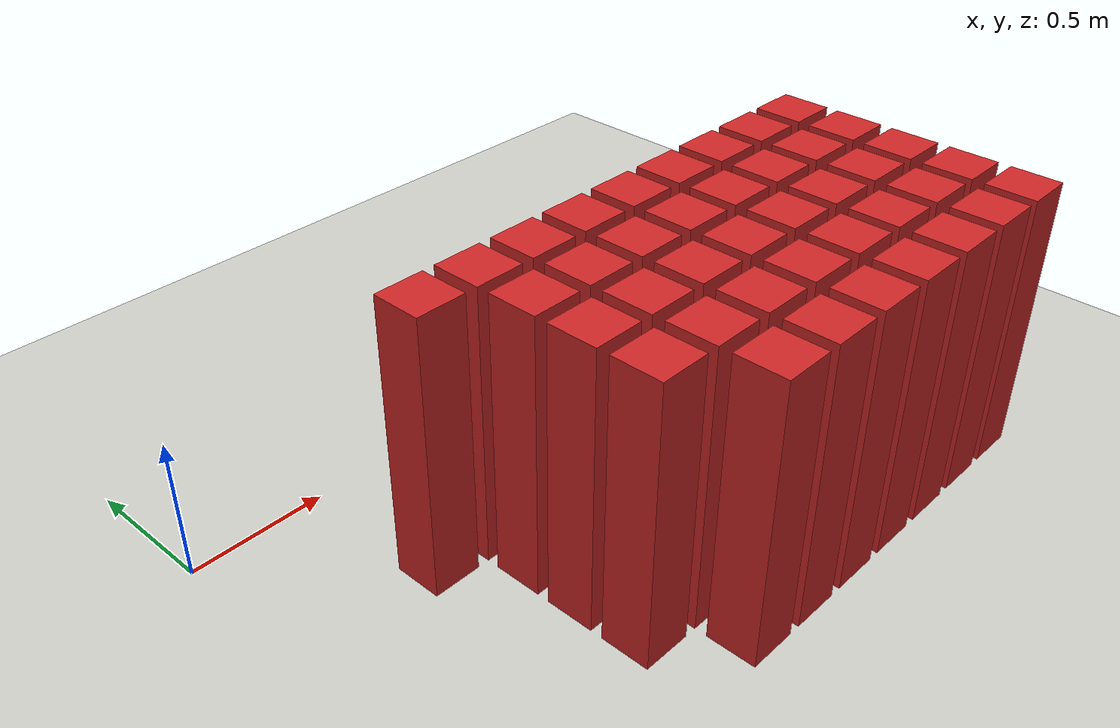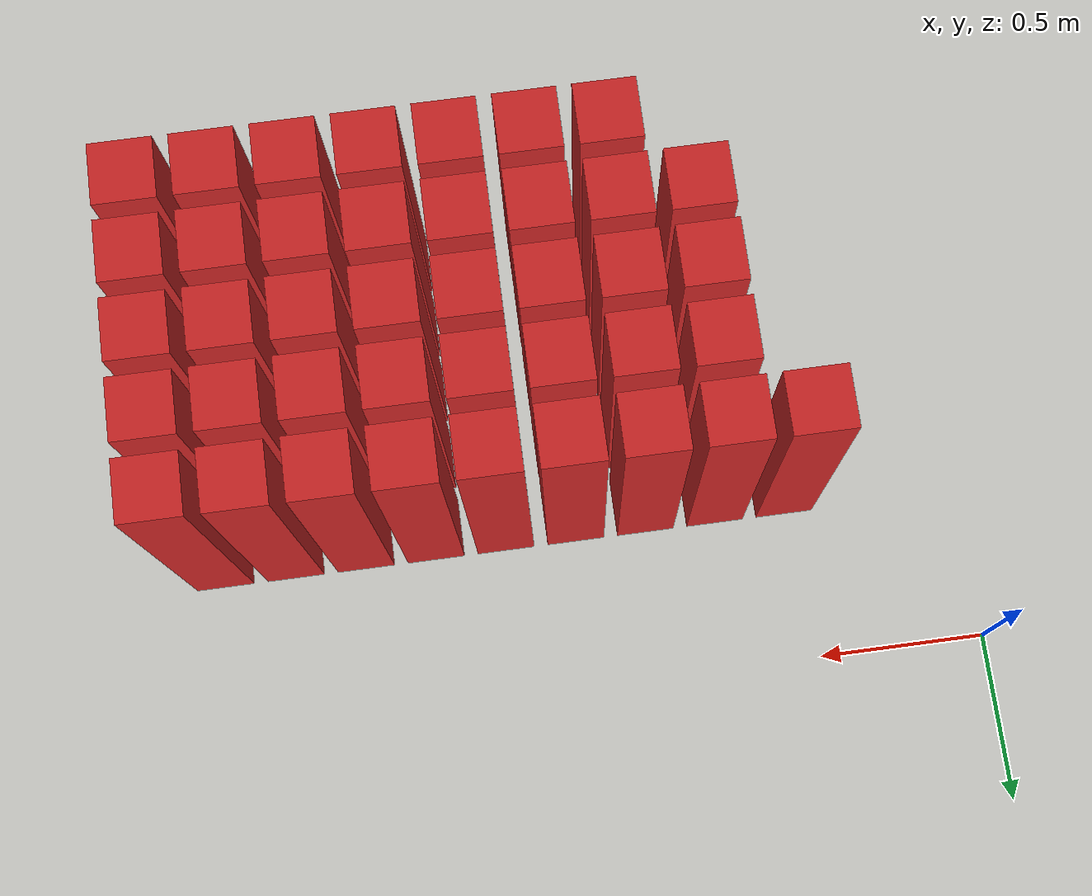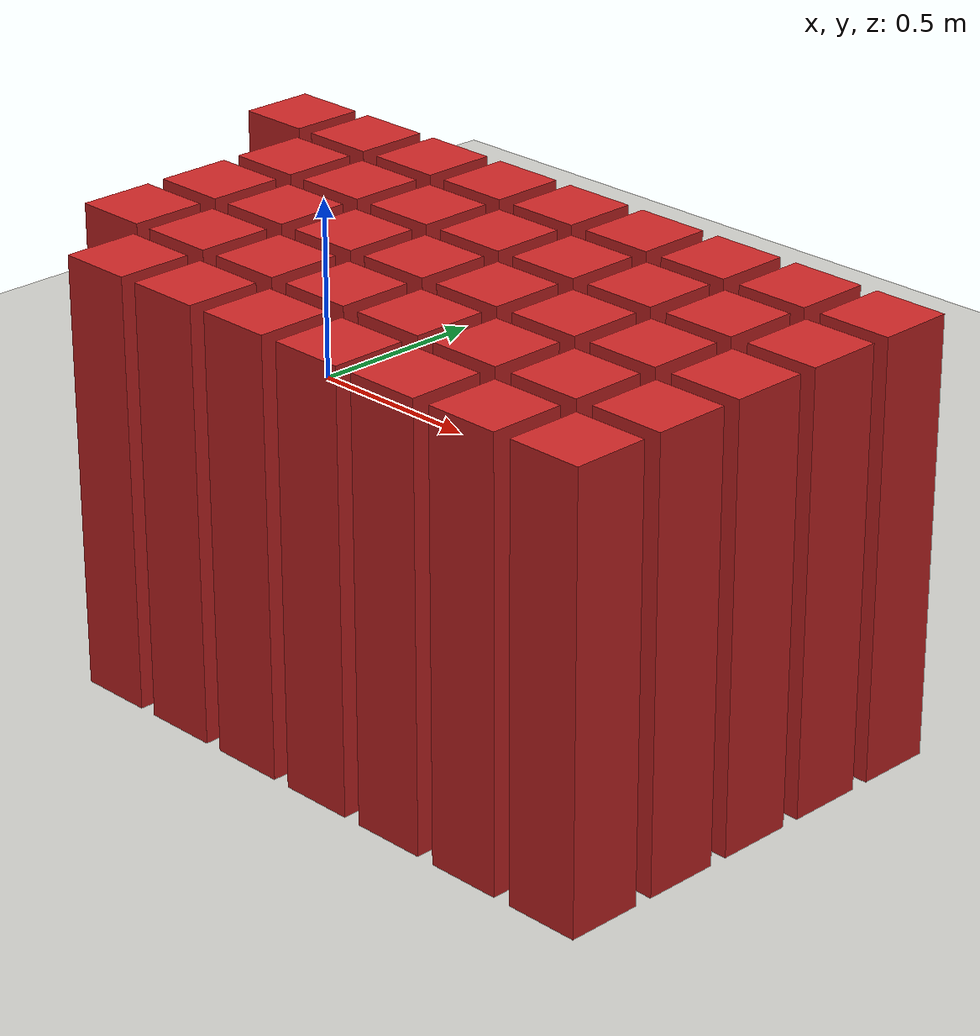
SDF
<sdf version="1.7">
 <world name="default">
  <model name="ground_plane">
   <static>1</static>
   <link name="link">
    <collision name="collision">
     <geometry><plane><normal>0 0 1</normal><size>100 100</size></plane></geometry>
     <surface>
      <contact><collide_bitmask>65535</collide_bitmask></contact>
      <friction><ode><mu>100</mu><mu2>50</mu2></ode></friction>
     </surface>
    </collision>
    <visual name="visual">
     <cast_shadows>0</cast_shadows>
     <geometry><plane><normal>0 0 1</normal><size>100 100</size></plane></geometry>
     <material>
      <script><uri>file://media/materials/scripts/gazebo.material</uri><name>Gazebo/CeilingTiled</name></script>
     </material>
    </visual>
   </link>
  </model>
  <model name="wall131">
   <link name="link">
    <pose>0 0 0.5 0 -0 0</pose>
    <inertial>
     <mass>0.5167</mass>
     <inertia>
      <ixx>0.000861167</ixx>
      <ixy>0</ixy>
      <ixz>0</ixz>
      <iyy>0.000861167</iyy>
      <iyz>0</iyz>
      <izz>0.000861167</izz>
     </inertia>
    </inertial>
    <collision name="collision">
     <geometry><box><size>0.21 0.21 1</size></box></geometry>
     <surface>
      <contact>
       <poissons_ratio>0.347</poissons_ratio>
       <elastic_modulus>8.8e+09</elastic_modulus>
       <ode><kp>100000</kp><kd>100</kd><max_vel>100</max_vel><min_depth>0.001</min_depth></ode>
      </contact>
      <friction>
       <torsional>
        <coefficient>1</coefficient>
        <use_patch_radius>0</use_patch_radius>
        <surface_radius>0.01</surface_radius>
       </torsional>
      </friction>
     </surface>
    </collision>
    <visual name="visual">
     <geometry><box><size>0.175 0.175 1</size></box></geometry>
     <material>
      <script><uri>file://media/materials/scripts/gazebo.material</uri><name>Gazebo/Red</name></script>
     </material>
    </visual>
   </link>
   <pose>0.978261 -1.41304 0 0 -0 0</pose>
  </model>
  <model name="wall132">
   <link name="link">
    <pose>0 0 0.5 0 -0 0</pose>
    <inertial>
     <mass>0.5167</mass>
     <inertia>
      <ixx>0.000861167</ixx>
      <ixy>0</ixy>
      <ixz>0</ixz>
      <iyy>0.000861167</iyy>
      <iyz>0</iyz>
      <izz>0.000861167</izz>
     </inertia>
    </inertial>
    <collision name="collision">
     <geometry><box><size>0.21 0.21 1</size></box></geometry>
     <surface>
      <contact>
       <poissons_ratio>0.347</poissons_ratio>
       <elastic_modulus>8.8e+09</elastic_modulus>
       <ode><kp>100000</kp><kd>100</kd><max_vel>100</max_vel><min_depth>0.001</min_depth></ode>
      </contact>
      <friction>
       <torsional>
        <coefficient>1</coefficient>
        <use_patch_radius>0</use_patch_radius>
        <surface_radius>0.01</surface_radius>
       </torsional>
      </friction>
     </surface>
    </collision>
    <visual name="visual">
     <geometry><box><size>0.175 0.175 1</size></box></geometry>
     <material>
      <script><uri>file://media/materials/scripts/gazebo.material</uri><name>Gazebo/Red</name></script>
     </material>
    </visual>
   </link>
   <pose>1.19565 -1.41304 0 0 -0 0</pose>
  </model>
  <model name="wall133">
   <link name="link">
    <pose>0 0 0.5 0 -0 0</pose>
    <inertial>
     <mass>0.5167</mass>
     <inertia>
      <ixx>0.000861167</ixx>
      <ixy>0</ixy>
      <ixz>0</ixz>
      <iyy>0.000861167</iyy>
      <iyz>0</iyz>
      <izz>0.000861167</izz>
     </inertia>
    </inertial>
    <collision name="collision">
     <geometry><box><size>0.21 0.21 1</size></box></geometry>
     <surface>
      <contact>
       <poissons_ratio>0.347</poissons_ratio>
       <elastic_modulus>8.8e+09</elastic_modulus>
       <ode><kp>100000</kp><kd>100</kd><max_vel>100</max_vel><min_depth>0.001</min_depth></ode>
      </contact>
      <friction>
       <torsional>
        <coefficient>1</coefficient>
        <use_patch_radius>0</use_patch_radius>
        <surface_radius>0.01</surface_radius>
       </torsional>
      </friction>
     </surface>
    </collision>
    <visual name="visual">
     <geometry><box><size>0.175 0.175 1</size></box></geometry>
     <material>
      <script><uri>file://media/materials/scripts/gazebo.material</uri><name>Gazebo/Red</name></script>
     </material>
    </visual>
   </link>
   <pose>1.41304 -1.41304 0 0 -0 0</pose>
  </model>
  <model name="wall134">
   <link name="link">
    <pose>0 0 0.5 0 -0 0</pose>
    <inertial>
     <mass>0.5167</mass>
     <inertia>
      <ixx>0.000861167</ixx>
      <ixy>0</ixy>
      <ixz>0</ixz>
      <iyy>0.000861167</iyy>
      <iyz>0</iyz>
      <izz>0.000861167</izz>
     </inertia>
    </inertial>
    <collision name="collision">
     <geometry><box><size>0.21 0.21 1</size></box></geometry>
     <surface>
      <contact>
       <poissons_ratio>0.347</poissons_ratio>
       <elastic_modulus>8.8e+09</elastic_modulus>
       <ode><kp>100000</kp><kd>100</kd><max_vel>100</max_vel><min_depth>0.001</min_depth></ode>
      </contact>
      <friction>
       <torsional>
        <coefficient>1</coefficient>
        <use_patch_radius>0</use_patch_radius>
        <surface_radius>0.01</surface_radius>
       </torsional>
      </friction>
     </surface>
    </collision>
    <visual name="visual">
     <geometry><box><size>0.175 0.175 1</size></box></geometry>
     <material>
      <script><uri>file://media/materials/scripts/gazebo.material</uri><name>Gazebo/Red</name></script>
     </material>
    </visual>
   </link>
   <pose>1.63043 -1.41304 0 0 -0 0</pose>
  </model>
  <model name="wall135">
   <link name="link">
    <pose>0 0 0.5 0 -0 0</pose>
    <inertial>
     <mass>0.5167</mass>
     <inertia>
      <ixx>0.000861167</ixx>
      <ixy>0</ixy>
      <ixz>0</ixz>
      <iyy>0.000861167</iyy>
      <iyz>0</iyz>
      <izz>0.000861167</izz>
     </inertia>
    </inertial>
    <collision name="collision">
     <geometry><box><size>0.21 0.21 1</size></box></geometry>
     <surface>
      <contact>
       <poissons_ratio>0.347</poissons_ratio>
       <elastic_modulus>8.8e+09</elastic_modulus>
       <ode><kp>100000</kp><kd>100</kd><max_vel>100</max_vel><min_depth>0.001</min_depth></ode>
      </contact>
      <friction>
       <torsional>
        <coefficient>1</coefficient>
        <use_patch_radius>0</use_patch_radius>
        <surface_radius>0.01</surface_radius>
       </torsional>
      </friction>
     </surface>
    </collision>
    <visual name="visual">
     <geometry><box><size>0.175 0.175 1</size></box></geometry>
     <material>
      <script><uri>file://media/materials/scripts/gazebo.material</uri><name>Gazebo/Red</name></script>
     </material>
    </visual>
   </link>
   <pose>1.84783 -1.41304 0 0 -0 0</pose>
  </model>
  <model name="wall136">
   <link name="link">
    <pose>0 0 0.5 0 -0 0</pose>
    <inertial>
     <mass>0.5167</mass>
     <inertia>
      <ixx>0.000861167</ixx>
      <ixy>0</ixy>
      <ixz>0</ixz>
      <iyy>0.000861167</iyy>
      <iyz>0</iyz>
      <izz>0.000861167</izz>
     </inertia>
    </inertial>
    <collision name="collision">
     <geometry><box><size>0.21 0.21 1</size></box></geometry>
     <surface>
      <contact>
       <poissons_ratio>0.347</poissons_ratio>
       <elastic_modulus>8.8e+09</elastic_modulus>
       <ode><kp>100000</kp><kd>100</kd><max_vel>100</max_vel><min_depth>0.001</min_depth></ode>
      </contact>
      <friction>
       <torsional>
        <coefficient>1</coefficient>
        <use_patch_radius>0</use_patch_radius>
        <surface_radius>0.01</surface_radius>
       </torsional>
      </friction>
     </surface>
    </collision>
    <visual name="visual">
     <geometry><box><size>0.175 0.175 1</size></box></geometry>
     <material>
      <script><uri>file://media/materials/scripts/gazebo.material</uri><name>Gazebo/Red</name></script>
     </material>
    </visual>
   </link>
   <pose>2.06522 -1.41304 0 0 -0 0</pose>
  </model>
  <model name="wall137">
   <link name="link">
    <pose>0 0 0.5 0 -0 0</pose>
    <inertial>
     <mass>0.5167</mass>
     <inertia>
      <ixx>0.000861167</ixx>
      <ixy>0</ixy>
      <ixz>0</ixz>
      <iyy>0.000861167</iyy>
      <iyz>0</iyz>
      <izz>0.000861167</izz>
     </inertia>
    </inertial>
    <collision name="collision">
     <geometry><box><size>0.21 0.21 1</size></box></geometry>
     <surface>
      <contact>
       <poissons_ratio>0.347</poissons_ratio>
       <elastic_modulus>8.8e+09</elastic_modulus>
       <ode><kp>100000</kp><kd>100</kd><max_vel>100</max_vel><min_depth>0.001</min_depth></ode>
      </contact>
      <friction>
       <torsional>
        <coefficient>1</coefficient>
        <use_patch_radius>0</use_patch_radius>
        <surface_radius>0.01</surface_radius>
       </torsional>
      </friction>
     </surface>
    </collision>
    <visual name="visual">
     <geometry><box><size>0.175 0.175 1</size></box></geometry>
     <material>
      <script><uri>file://media/materials/scripts/gazebo.material</uri><name>Gazebo/Red</name></script>
     </material>
    </visual>
   </link>
   <pose>2.28261 -1.41304 0 0 -0 0</pose>
  </model>
  <model name="wall153">
   <link name="link">
    <pose>0 0 0.5 0 -0 0</pose>
    <inertial>
     <mass>0.5167</mass>
     <inertia>
      <ixx>0.000861167</ixx>
      <ixy>0</ixy>
      <ixz>0</ixz>
      <iyy>0.000861167</iyy>
      <iyz>0</iyz>
      <izz>0.000861167</izz>
     </inertia>
    </inertial>
    <collision name="collision">
     <geometry><box><size>0.21 0.21 1</size></box></geometry>
     <surface>
      <contact>
       <poissons_ratio>0.347</poissons_ratio>
       <elastic_modulus>8.8e+09</elastic_modulus>
       <ode><kp>100000</kp><kd>100</kd><max_vel>100</max_vel><min_depth>0.001</min_depth></ode>
      </contact>
      <friction>
       <torsional>
        <coefficient>1</coefficient>
        <use_patch_radius>0</use_patch_radius>
        <surface_radius>0.01</surface_radius>
       </torsional>
      </friction>
     </surface>
    </collision>
    <visual name="visual">
     <geometry><box><size>0.175 0.175 1</size></box></geometry>
     <material>
      <script><uri>file://media/materials/scripts/gazebo.material</uri><name>Gazebo/Red</name></script>
     </material>
    </visual>
   </link>
   <pose>0.76087 -1.19565 0 0 -0 0</pose>
  </model>
  <model name="wall154">
   <link name="link">
    <pose>0 0 0.5 0 -0 0</pose>
    <inertial>
     <mass>0.5167</mass>
     <inertia>
      <ixx>0.000861167</ixx>
      <ixy>0</ixy>
      <ixz>0</ixz>
      <iyy>0.000861167</iyy>
      <iyz>0</iyz>
      <izz>0.000861167</izz>
     </inertia>
    </inertial>
    <collision name="collision">
     <geometry><box><size>0.21 0.21 1</size></box></geometry>
     <surface>
      <contact>
       <poissons_ratio>0.347</poissons_ratio>
       <elastic_modulus>8.8e+09</elastic_modulus>
       <ode><kp>100000</kp><kd>100</kd><max_vel>100</max_vel><min_depth>0.001</min_depth></ode>
      </contact>
      <friction>
       <torsional>
        <coefficient>1</coefficient>
        <use_patch_radius>0</use_patch_radius>
        <surface_radius>0.01</surface_radius>
       </torsional>
      </friction>
     </surface>
    </collision>
    <visual name="visual">
     <geometry><box><size>0.175 0.175 1</size></box></geometry>
     <material>
      <script><uri>file://media/materials/scripts/gazebo.material</uri><name>Gazebo/Red</name></script>
     </material>
    </visual>
   </link>
   <pose>0.978261 -1.19565 0 0 -0 0</pose>
  </model>
  <model name="wall155">
   <link name="link">
    <pose>0 0 0.5 0 -0 0</pose>
    <inertial>
     <mass>0.5167</mass>
     <inertia>
      <ixx>0.000861167</ixx>
      <ixy>0</ixy>
      <ixz>0</ixz>
      <iyy>0.000861167</iyy>
      <iyz>0</iyz>
      <izz>0.000861167</izz>
     </inertia>
    </inertial>
    <collision name="collision">
     <geometry><box><size>0.21 0.21 1</size></box></geometry>
     <surface>
      <contact>
       <poissons_ratio>0.347</poissons_ratio>
       <elastic_modulus>8.8e+09</elastic_modulus>
       <ode><kp>100000</kp><kd>100</kd><max_vel>100</max_vel><min_depth>0.001</min_depth></ode>
      </contact>
      <friction>
       <torsional>
        <coefficient>1</coefficient>
        <use_patch_radius>0</use_patch_radius>
        <surface_radius>0.01</surface_radius>
       </torsional>
      </friction>
     </surface>
    </collision>
    <visual name="visual">
     <geometry><box><size>0.175 0.175 1</size></box></geometry>
     <material>
      <script><uri>file://media/materials/scripts/gazebo.material</uri><name>Gazebo/Red</name></script>
     </material>
    </visual>
   </link>
   <pose>1.19565 -1.19565 0 0 -0 0</pose>
  </model>
  <model name="wall156">
   <link name="link">
    <pose>0 0 0.5 0 -0 0</pose>
    <inertial>
     <mass>0.5167</mass>
     <inertia>
      <ixx>0.000861167</ixx>
      <ixy>0</ixy>
      <ixz>0</ixz>
      <iyy>0.000861167</iyy>
      <iyz>0</iyz>
      <izz>0.000861167</izz>
     </inertia>
    </inertial>
    <collision name="collision">
     <geometry><box><size>0.21 0.21 1</size></box></geometry>
     <surface>
      <contact>
       <poissons_ratio>0.347</poissons_ratio>
       <elastic_modulus>8.8e+09</elastic_modulus>
       <ode><kp>100000</kp><kd>100</kd><max_vel>100</max_vel><min_depth>0.001</min_depth></ode>
      </contact>
      <friction>
       <torsional>
        <coefficient>1</coefficient>
        <use_patch_radius>0</use_patch_radius>
        <surface_radius>0.01</surface_radius>
       </torsional>
      </friction>
     </surface>
    </collision>
    <visual name="visual">
     <geometry><box><size>0.175 0.175 1</size></box></geometry>
     <material>
      <script><uri>file://media/materials/scripts/gazebo.material</uri><name>Gazebo/Red</name></script>
     </material>
    </visual>
   </link>
   <pose>1.41304 -1.19565 0 0 -0 0</pose>
  </model>
  <model name="wall157">
   <link name="link">
    <pose>0 0 0.5 0 -0 0</pose>
    <inertial>
     <mass>0.5167</mass>
     <inertia>
      <ixx>0.000861167</ixx>
      <ixy>0</ixy>
      <ixz>0</ixz>
      <iyy>0.000861167</iyy>
      <iyz>0</iyz>
      <izz>0.000861167</izz>
     </inertia>
    </inertial>
    <collision name="collision">
     <geometry><box><size>0.21 0.21 1</size></box></geometry>
     <surface>
      <contact>
       <poissons_ratio>0.347</poissons_ratio>
       <elastic_modulus>8.8e+09</elastic_modulus>
       <ode><kp>100000</kp><kd>100</kd><max_vel>100</max_vel><min_depth>0.001</min_depth></ode>
      </contact>
      <friction>
       <torsional>
        <coefficient>1</coefficient>
        <use_patch_radius>0</use_patch_radius>
        <surface_radius>0.01</surface_radius>
       </torsional>
      </friction>
     </surface>
    </collision>
    <visual name="visual">
     <geometry><box><size>0.175 0.175 1</size></box></geometry>
     <material>
      <script><uri>file://media/materials/scripts/gazebo.material</uri><name>Gazebo/Red</name></script>
     </material>
    </visual>
   </link>
   <pose>1.63043 -1.19565 0 0 -0 0</pose>
  </model>
  <model name="wall158">
   <link name="link">
    <pose>0 0 0.5 0 -0 0</pose>
    <inertial>
     <mass>0.5167</mass>
     <inertia>
      <ixx>0.000861167</ixx>
      <ixy>0</ixy>
      <ixz>0</ixz>
      <iyy>0.000861167</iyy>
      <iyz>0</iyz>
      <izz>0.000861167</izz>
     </inertia>
    </inertial>
    <collision name="collision">
     <geometry><box><size>0.21 0.21 1</size></box></geometry>
     <surface>
      <contact>
       <poissons_ratio>0.347</poissons_ratio>
       <elastic_modulus>8.8e+09</elastic_modulus>
       <ode><kp>100000</kp><kd>100</kd><max_vel>100</max_vel><min_depth>0.001</min_depth></ode>
      </contact>
      <friction>
       <torsional>
        <coefficient>1</coefficient>
        <use_patch_radius>0</use_patch_radius>
        <surface_radius>0.01</surface_radius>
       </torsional>
      </friction>
     </surface>
    </collision>
    <visual name="visual">
     <geometry><box><size>0.175 0.175 1</size></box></geometry>
     <material>
      <script><uri>file://media/materials/scripts/gazebo.material</uri><name>Gazebo/Red</name></script>
     </material>
    </visual>
   </link>
   <pose>1.84783 -1.19565 0 0 -0 0</pose>
  </model>
  <model name="wall159">
   <link name="link">
    <pose>0 0 0.5 0 -0 0</pose>
    <inertial>
     <mass>0.5167</mass>
     <inertia>
      <ixx>0.000861167</ixx>
      <ixy>0</ixy>
      <ixz>0</ixz>
      <iyy>0.000861167</iyy>
      <iyz>0</iyz>
      <izz>0.000861167</izz>
     </inertia>
    </inertial>
    <collision name="collision">
     <geometry><box><size>0.21 0.21 1</size></box></geometry>
     <surface>
      <contact>
       <poissons_ratio>0.347</poissons_ratio>
       <elastic_modulus>8.8e+09</elastic_modulus>
       <ode><kp>100000</kp><kd>100</kd><max_vel>100</max_vel><min_depth>0.001</min_depth></ode>
      </contact>
      <friction>
       <torsional>
        <coefficient>1</coefficient>
        <use_patch_radius>0</use_patch_radius>
        <surface_radius>0.01</surface_radius>
       </torsional>
      </friction>
     </surface>
    </collision>
    <visual name="visual">
     <geometry><box><size>0.175 0.175 1</size></box></geometry>
     <material>
      <script><uri>file://media/materials/scripts/gazebo.material</uri><name>Gazebo/Red</name></script>
     </material>
    </visual>
   </link>
   <pose>2.06522 -1.19565 0 0 -0 0</pose>
  </model>
  <model name="wall160">
   <link name="link">
    <pose>0 0 0.5 0 -0 0</pose>
    <inertial>
     <mass>0.5167</mass>
     <inertia>
      <ixx>0.000861167</ixx>
      <ixy>0</ixy>
      <ixz>0</ixz>
      <iyy>0.000861167</iyy>
      <iyz>0</iyz>
      <izz>0.000861167</izz>
     </inertia>
    </inertial>
    <collision name="collision">
     <geometry><box><size>0.21 0.21 1</size></box></geometry>
     <surface>
      <contact>
       <poissons_ratio>0.347</poissons_ratio>
       <elastic_modulus>8.8e+09</elastic_modulus>
       <ode><kp>100000</kp><kd>100</kd><max_vel>100</max_vel><min_depth>0.001</min_depth></ode>
      </contact>
      <friction>
       <torsional>
        <coefficient>1</coefficient>
        <use_patch_radius>0</use_patch_radius>
        <surface_radius>0.01</surface_radius>
       </torsional>
      </friction>
     </surface>
    </collision>
    <visual name="visual">
     <geometry><box><size>0.175 0.175 1</size></box></geometry>
     <material>
      <script><uri>file://media/materials/scripts/gazebo.material</uri><name>Gazebo/Red</name></script>
     </material>
    </visual>
   </link>
   <pose>2.28261 -1.19565 0 0 -0 0</pose>
  </model>
  <model name="wall176">
   <link name="link">
    <pose>0 0 0.5 0 -0 0</pose>
    <inertial>
     <mass>0.5167</mass>
     <inertia>
      <ixx>0.000861167</ixx>
      <ixy>0</ixy>
      <ixz>0</ixz>
      <iyy>0.000861167</iyy>
      <iyz>0</iyz>
      <izz>0.000861167</izz>
     </inertia>
    </inertial>
    <collision name="collision">
     <geometry><box><size>0.21 0.21 1</size></box></geometry>
     <surface>
      <contact>
       <poissons_ratio>0.347</poissons_ratio>
       <elastic_modulus>8.8e+09</elastic_modulus>
       <ode><kp>100000</kp><kd>100</kd><max_vel>100</max_vel><min_depth>0.001</min_depth></ode>
      </contact>
      <friction>
       <torsional>
        <coefficient>1</coefficient>
        <use_patch_radius>0</use_patch_radius>
        <surface_radius>0.01</surface_radius>
       </torsional>
      </friction>
     </surface>
    </collision>
    <visual name="visual">
     <geometry><box><size>0.175 0.175 1</size></box></geometry>
     <material>
      <script><uri>file://media/materials/scripts/gazebo.material</uri><name>Gazebo/Red</name></script>
     </material>
    </visual>
   </link>
   <pose>0.76087 -0.978261 0 0 -0 0</pose>
  </model>
  <model name="wall177">
   <link name="link">
    <pose>0 0 0.5 0 -0 0</pose>
    <inertial>
     <mass>0.5167</mass>
     <inertia>
      <ixx>0.000861167</ixx>
      <ixy>0</ixy>
      <ixz>0</ixz>
      <iyy>0.000861167</iyy>
      <iyz>0</iyz>
      <izz>0.000861167</izz>
     </inertia>
    </inertial>
    <collision name="collision">
     <geometry><box><size>0.21 0.21 1</size></box></geometry>
     <surface>
      <contact>
       <poissons_ratio>0.347</poissons_ratio>
       <elastic_modulus>8.8e+09</elastic_modulus>
       <ode><kp>100000</kp><kd>100</kd><max_vel>100</max_vel><min_depth>0.001</min_depth></ode>
      </contact>
      <friction>
       <torsional>
        <coefficient>1</coefficient>
        <use_patch_radius>0</use_patch_radius>
        <surface_radius>0.01</surface_radius>
       </torsional>
      </friction>
     </surface>
    </collision>
    <visual name="visual">
     <geometry><box><size>0.175 0.175 1</size></box></geometry>
     <material>
      <script><uri>file://media/materials/scripts/gazebo.material</uri><name>Gazebo/Red</name></script>
     </material>
    </visual>
   </link>
   <pose>0.978261 -0.978261 0 0 -0 0</pose>
  </model>
  <model name="wall178">
   <link name="link">
    <pose>0 0 0.5 0 -0 0</pose>
    <inertial>
     <mass>0.5167</mass>
     <inertia>
      <ixx>0.000861167</ixx>
      <ixy>0</ixy>
      <ixz>0</ixz>
      <iyy>0.000861167</iyy>
      <iyz>0</iyz>
      <izz>0.000861167</izz>
     </inertia>
    </inertial>
    <collision name="collision">
     <geometry><box><size>0.21 0.21 1</size></box></geometry>
     <surface>
      <contact>
       <poissons_ratio>0.347</poissons_ratio>
       <elastic_modulus>8.8e+09</elastic_modulus>
       <ode><kp>100000</kp><kd>100</kd><max_vel>100</max_vel><min_depth>0.001</min_depth></ode>
      </contact>
      <friction>
       <torsional>
        <coefficient>1</coefficient>
        <use_patch_radius>0</use_patch_radius>
        <surface_radius>0.01</surface_radius>
       </torsional>
      </friction>
     </surface>
    </collision>
    <visual name="visual">
     <geometry><box><size>0.175 0.175 1</size></box></geometry>
     <material>
      <script><uri>file://media/materials/scripts/gazebo.material</uri><name>Gazebo/Red</name></script>
     </material>
    </visual>
   </link>
   <pose>1.19565 -0.978261 0 0 -0 0</pose>
  </model>
  <model name="wall179">
   <link name="link">
    <pose>0 0 0.5 0 -0 0</pose>
    <inertial>
     <mass>0.5167</mass>
     <inertia>
      <ixx>0.000861167</ixx>
      <ixy>0</ixy>
      <ixz>0</ixz>
      <iyy>0.000861167</iyy>
      <iyz>0</iyz>
      <izz>0.000861167</izz>
     </inertia>
    </inertial>
    <collision name="collision">
     <geometry><box><size>0.21 0.21 1</size></box></geometry>
     <surface>
      <contact>
       <poissons_ratio>0.347</poissons_ratio>
       <elastic_modulus>8.8e+09</elastic_modulus>
       <ode><kp>100000</kp><kd>100</kd><max_vel>100</max_vel><min_depth>0.001</min_depth></ode>
      </contact>
      <friction>
       <torsional>
        <coefficient>1</coefficient>
        <use_patch_radius>0</use_patch_radius>
        <surface_radius>0.01</surface_radius>
       </torsional>
      </friction>
     </surface>
    </collision>
    <visual name="visual">
     <geometry><box><size>0.175 0.175 1</size></box></geometry>
     <material>
      <script><uri>file://media/materials/scripts/gazebo.material</uri><name>Gazebo/Red</name></script>
     </material>
    </visual>
   </link>
   <pose>1.41304 -0.978261 0 0 -0 0</pose>
  </model>
  <model name="wall180">
   <link name="link">
    <pose>0 0 0.5 0 -0 0</pose>
    <inertial>
     <mass>0.5167</mass>
     <inertia>
      <ixx>0.000861167</ixx>
      <ixy>0</ixy>
      <ixz>0</ixz>
      <iyy>0.000861167</iyy>
      <iyz>0</iyz>
      <izz>0.000861167</izz>
     </inertia>
    </inertial>
    <collision name="collision">
     <geometry><box><size>0.21 0.21 1</size></box></geometry>
     <surface>
      <contact>
       <poissons_ratio>0.347</poissons_ratio>
       <elastic_modulus>8.8e+09</elastic_modulus>
       <ode><kp>100000</kp><kd>100</kd><max_vel>100</max_vel><min_depth>0.001</min_depth></ode>
      </contact>
      <friction>
       <torsional>
        <coefficient>1</coefficient>
        <use_patch_radius>0</use_patch_radius>
        <surface_radius>0.01</surface_radius>
       </torsional>
      </friction>
     </surface>
    </collision>
    <visual name="visual">
     <geometry><box><size>0.175 0.175 1</size></box></geometry>
     <material>
      <script><uri>file://media/materials/scripts/gazebo.material</uri><name>Gazebo/Red</name></script>
     </material>
    </visual>
   </link>
   <pose>1.63043 -0.978261 0 0 -0 0</pose>
  </model>
  <model name="wall181">
   <link name="link">
    <pose>0 0 0.5 0 -0 0</pose>
    <inertial>
     <mass>0.5167</mass>
     <inertia>
      <ixx>0.000861167</ixx>
      <ixy>0</ixy>
      <ixz>0</ixz>
      <iyy>0.000861167</iyy>
      <iyz>0</iyz>
      <izz>0.000861167</izz>
     </inertia>
    </inertial>
    <collision name="collision">
     <geometry><box><size>0.21 0.21 1</size></box></geometry>
     <surface>
      <contact>
       <poissons_ratio>0.347</poissons_ratio>
       <elastic_modulus>8.8e+09</elastic_modulus>
       <ode><kp>100000</kp><kd>100</kd><max_vel>100</max_vel><min_depth>0.001</min_depth></ode>
      </contact>
      <friction>
       <torsional>
        <coefficient>1</coefficient>
        <use_patch_radius>0</use_patch_radius>
        <surface_radius>0.01</surface_radius>
       </torsional>
      </friction>
     </surface>
    </collision>
    <visual name="visual">
     <geometry><box><size>0.175 0.175 1</size></box></geometry>
     <material>
      <script><uri>file://media/materials/scripts/gazebo.material</uri><name>Gazebo/Red</name></script>
     </material>
    </visual>
   </link>
   <pose>1.84783 -0.978261 0 0 -0 0</pose>
  </model>
  <model name="wall182">
   <link name="link">
    <pose>0 0 0.5 0 -0 0</pose>
    <inertial>
     <mass>0.5167</mass>
     <inertia>
      <ixx>0.000861167</ixx>
      <ixy>0</ixy>
      <ixz>0</ixz>
      <iyy>0.000861167</iyy>
      <iyz>0</iyz>
      <izz>0.000861167</izz>
     </inertia>
    </inertial>
    <collision name="collision">
     <geometry><box><size>0.21 0.21 1</size></box></geometry>
     <surface>
      <contact>
       <poissons_ratio>0.347</poissons_ratio>
       <elastic_modulus>8.8e+09</elastic_modulus>
       <ode><kp>100000</kp><kd>100</kd><max_vel>100</max_vel><min_depth>0.001</min_depth></ode>
      </contact>
      <friction>
       <torsional>
        <coefficient>1</coefficient>
        <use_patch_radius>0</use_patch_radius>
        <surface_radius>0.01</surface_radius>
       </torsional>
      </friction>
     </surface>
    </collision>
    <visual name="visual">
     <geometry><box><size>0.175 0.175 1</size></box></geometry>
     <material>
      <script><uri>file://media/materials/scripts/gazebo.material</uri><name>Gazebo/Red</name></script>
     </material>
    </visual>
   </link>
   <pose>2.06522 -0.978261 0 0 -0 0</pose>
  </model>
  <model name="wall183">
   <link name="link">
    <pose>0 0 0.5 0 -0 0</pose>
    <inertial>
     <mass>0.5167</mass>
     <inertia>
      <ixx>0.000861167</ixx>
      <ixy>0</ixy>
      <ixz>0</ixz>
      <iyy>0.000861167</iyy>
      <iyz>0</iyz>
      <izz>0.000861167</izz>
     </inertia>
    </inertial>
    <collision name="collision">
     <geometry><box><size>0.21 0.21 1</size></box></geometry>
     <surface>
      <contact>
       <poissons_ratio>0.347</poissons_ratio>
       <elastic_modulus>8.8e+09</elastic_modulus>
       <ode><kp>100000</kp><kd>100</kd><max_vel>100</max_vel><min_depth>0.001</min_depth></ode>
      </contact>
      <friction>
       <torsional>
        <coefficient>1</coefficient>
        <use_patch_radius>0</use_patch_radius>
        <surface_radius>0.01</surface_radius>
       </torsional>
      </friction>
     </surface>
    </collision>
    <visual name="visual">
     <geometry><box><size>0.175 0.175 1</size></box></geometry>
     <material>
      <script><uri>file://media/materials/scripts/gazebo.material</uri><name>Gazebo/Red</name></script>
     </material>
    </visual>
   </link>
   <pose>2.28261 -0.978261 0 0 -0 0</pose>
  </model>
  <model name="wall199">
   <link name="link">
    <pose>0 0 0.5 0 -0 0</pose>
    <inertial>
     <mass>0.5167</mass>
     <inertia>
      <ixx>0.000861167</ixx>
      <ixy>0</ixy>
      <ixz>0</ixz>
      <iyy>0.000861167</iyy>
      <iyz>0</iyz>
      <izz>0.000861167</izz>
     </inertia>
    </inertial>
    <collision name="collision">
     <geometry><box><size>0.21 0.21 1</size></box></geometry>
     <surface>
      <contact>
       <poissons_ratio>0.347</poissons_ratio>
       <elastic_modulus>8.8e+09</elastic_modulus>
       <ode><kp>100000</kp><kd>100</kd><max_vel>100</max_vel><min_depth>0.001</min_depth></ode>
      </contact>
      <friction>
       <torsional>
        <coefficient>1</coefficient>
        <use_patch_radius>0</use_patch_radius>
        <surface_radius>0.01</surface_radius>
       </torsional>
      </friction>
     </surface>
    </collision>
    <visual name="visual">
     <geometry><box><size>0.175 0.175 1</size></box></geometry>
     <material>
      <script><uri>file://media/materials/scripts/gazebo.material</uri><name>Gazebo/Red</name></script>
     </material>
    </visual>
   </link>
   <pose>0.76087 -0.76087 0 0 -0 0</pose>
  </model>
  <model name="wall200">
   <link name="link">
    <pose>0 0 0.5 0 -0 0</pose>
    <inertial>
     <mass>0.5167</mass>
     <inertia>
      <ixx>0.000861167</ixx>
      <ixy>0</ixy>
      <ixz>0</ixz>
      <iyy>0.000861167</iyy>
      <iyz>0</iyz>
      <izz>0.000861167</izz>
     </inertia>
    </inertial>
    <collision name="collision">
     <geometry><box><size>0.21 0.21 1</size></box></geometry>
     <surface>
      <contact>
       <poissons_ratio>0.347</poissons_ratio>
       <elastic_modulus>8.8e+09</elastic_modulus>
       <ode><kp>100000</kp><kd>100</kd><max_vel>100</max_vel><min_depth>0.001</min_depth></ode>
      </contact>
      <friction>
       <torsional>
        <coefficient>1</coefficient>
        <use_patch_radius>0</use_patch_radius>
        <surface_radius>0.01</surface_radius>
       </torsional>
      </friction>
     </surface>
    </collision>
    <visual name="visual">
     <geometry><box><size>0.175 0.175 1</size></box></geometry>
     <material>
      <script><uri>file://media/materials/scripts/gazebo.material</uri><name>Gazebo/Red</name></script>
     </material>
    </visual>
   </link>
   <pose>0.978261 -0.76087 0 0 -0 0</pose>
  </model>
  <model name="wall201">
   <link name="link">
    <pose>0 0 0.5 0 -0 0</pose>
    <inertial>
     <mass>0.5167</mass>
     <inertia>
      <ixx>0.000861167</ixx>
      <ixy>0</ixy>
      <ixz>0</ixz>
      <iyy>0.000861167</iyy>
      <iyz>0</iyz>
      <izz>0.000861167</izz>
     </inertia>
    </inertial>
    <collision name="collision">
     <geometry><box><size>0.21 0.21 1</size></box></geometry>
     <surface>
      <contact>
       <poissons_ratio>0.347</poissons_ratio>
       <elastic_modulus>8.8e+09</elastic_modulus>
       <ode><kp>100000</kp><kd>100</kd><max_vel>100</max_vel><min_depth>0.001</min_depth></ode>
      </contact>
      <friction>
       <torsional>
        <coefficient>1</coefficient>
        <use_patch_radius>0</use_patch_radius>
        <surface_radius>0.01</surface_radius>
       </torsional>
      </friction>
     </surface>
    </collision>
    <visual name="visual">
     <geometry><box><size>0.175 0.175 1</size></box></geometry>
     <material>
      <script><uri>file://media/materials/scripts/gazebo.material</uri><name>Gazebo/Red</name></script>
     </material>
    </visual>
   </link>
   <pose>1.19565 -0.76087 0 0 -0 0</pose>
  </model>
  <model name="wall202">
   <link name="link">
    <pose>0 0 0.5 0 -0 0</pose>
    <inertial>
     <mass>0.5167</mass>
     <inertia>
      <ixx>0.000861167</ixx>
      <ixy>0</ixy>
      <ixz>0</ixz>
      <iyy>0.000861167</iyy>
      <iyz>0</iyz>
      <izz>0.000861167</izz>
     </inertia>
    </inertial>
    <collision name="collision">
     <geometry><box><size>0.21 0.21 1</size></box></geometry>
     <surface>
      <contact>
       <poissons_ratio>0.347</poissons_ratio>
       <elastic_modulus>8.8e+09</elastic_modulus>
       <ode><kp>100000</kp><kd>100</kd><max_vel>100</max_vel><min_depth>0.001</min_depth></ode>
      </contact>
      <friction>
       <torsional>
        <coefficient>1</coefficient>
        <use_patch_radius>0</use_patch_radius>
        <surface_radius>0.01</surface_radius>
       </torsional>
      </friction>
     </surface>
    </collision>
    <visual name="visual">
     <geometry><box><size>0.175 0.175 1</size></box></geometry>
     <material>
      <script><uri>file://media/materials/scripts/gazebo.material</uri><name>Gazebo/Red</name></script>
     </material>
    </visual>
   </link>
   <pose>1.41304 -0.76087 0 0 -0 0</pose>
  </model>
  <model name="wall203">
   <link name="link">
    <pose>0 0 0.5 0 -0 0</pose>
    <inertial>
     <mass>0.5167</mass>
     <inertia>
      <ixx>0.000861167</ixx>
      <ixy>0</ixy>
      <ixz>0</ixz>
      <iyy>0.000861167</iyy>
      <iyz>0</iyz>
      <izz>0.000861167</izz>
     </inertia>
    </inertial>
    <collision name="collision">
     <geometry><box><size>0.21 0.21 1</size></box></geometry>
     <surface>
      <contact>
       <poissons_ratio>0.347</poissons_ratio>
       <elastic_modulus>8.8e+09</elastic_modulus>
       <ode><kp>100000</kp><kd>100</kd><max_vel>100</max_vel><min_depth>0.001</min_depth></ode>
      </contact>
      <friction>
       <torsional>
        <coefficient>1</coefficient>
        <use_patch_radius>0</use_patch_radius>
        <surface_radius>0.01</surface_radius>
       </torsional>
      </friction>
     </surface>
    </collision>
    <visual name="visual">
     <geometry><box><size>0.175 0.175 1</size></box></geometry>
     <material>
      <script><uri>file://media/materials/scripts/gazebo.material</uri><name>Gazebo/Red</name></script>
     </material>
    </visual>
   </link>
   <pose>1.63043 -0.76087 0 0 -0 0</pose>
  </model>
  <model name="wall204">
   <link name="link">
    <pose>0 0 0.5 0 -0 0</pose>
    <inertial>
     <mass>0.5167</mass>
     <inertia>
      <ixx>0.000861167</ixx>
      <ixy>0</ixy>
      <ixz>0</ixz>
      <iyy>0.000861167</iyy>
      <iyz>0</iyz>
      <izz>0.000861167</izz>
     </inertia>
    </inertial>
    <collision name="collision">
     <geometry><box><size>0.21 0.21 1</size></box></geometry>
     <surface>
      <contact>
       <poissons_ratio>0.347</poissons_ratio>
       <elastic_modulus>8.8e+09</elastic_modulus>
       <ode><kp>100000</kp><kd>100</kd><max_vel>100</max_vel><min_depth>0.001</min_depth></ode>
      </contact>
      <friction>
       <torsional>
        <coefficient>1</coefficient>
        <use_patch_radius>0</use_patch_radius>
        <surface_radius>0.01</surface_radius>
       </torsional>
      </friction>
     </surface>
    </collision>
    <visual name="visual">
     <geometry><box><size>0.175 0.175 1</size></box></geometry>
     <material>
      <script><uri>file://media/materials/scripts/gazebo.material</uri><name>Gazebo/Red</name></script>
     </material>
    </visual>
   </link>
   <pose>1.84783 -0.76087 0 0 -0 0</pose>
  </model>
  <model name="wall205">
   <link name="link">
    <pose>0 0 0.5 0 -0 0</pose>
    <inertial>
     <mass>0.5167</mass>
     <inertia>
      <ixx>0.000861167</ixx>
      <ixy>0</ixy>
      <ixz>0</ixz>
      <iyy>0.000861167</iyy>
      <iyz>0</iyz>
      <izz>0.000861167</izz>
     </inertia>
    </inertial>
    <collision name="collision">
     <geometry><box><size>0.21 0.21 1</size></box></geometry>
     <surface>
      <contact>
       <poissons_ratio>0.347</poissons_ratio>
       <elastic_modulus>8.8e+09</elastic_modulus>
       <ode><kp>100000</kp><kd>100</kd><max_vel>100</max_vel><min_depth>0.001</min_depth></ode>
      </contact>
      <friction>
       <torsional>
        <coefficient>1</coefficient>
        <use_patch_radius>0</use_patch_radius>
        <surface_radius>0.01</surface_radius>
       </torsional>
      </friction>
     </surface>
    </collision>
    <visual name="visual">
     <geometry><box><size>0.175 0.175 1</size></box></geometry>
     <material>
      <script><uri>file://media/materials/scripts/gazebo.material</uri><name>Gazebo/Red</name></script>
     </material>
    </visual>
   </link>
   <pose>2.06522 -0.76087 0 0 -0 0</pose>
  </model>
  <model name="wall206">
   <link name="link">
    <pose>0 0 0.5 0 -0 0</pose>
    <inertial>
     <mass>0.5167</mass>
     <inertia>
      <ixx>0.000861167</ixx>
      <ixy>0</ixy>
      <ixz>0</ixz>
      <iyy>0.000861167</iyy>
      <iyz>0</iyz>
      <izz>0.000861167</izz>
     </inertia>
    </inertial>
    <collision name="collision">
     <geometry><box><size>0.21 0.21 1</size></box></geometry>
     <surface>
      <contact>
       <poissons_ratio>0.347</poissons_ratio>
       <elastic_modulus>8.8e+09</elastic_modulus>
       <ode><kp>100000</kp><kd>100</kd><max_vel>100</max_vel><min_depth>0.001</min_depth></ode>
      </contact>
      <friction>
       <torsional>
        <coefficient>1</coefficient>
        <use_patch_radius>0</use_patch_radius>
        <surface_radius>0.01</surface_radius>
       </torsional>
      </friction>
     </surface>
    </collision>
    <visual name="visual">
     <geometry><box><size>0.175 0.175 1</size></box></geometry>
     <material>
      <script><uri>file://media/materials/scripts/gazebo.material</uri><name>Gazebo/Red</name></script>
     </material>
    </visual>
   </link>
   <pose>2.28261 -0.76087 0 0 -0 0</pose>
  </model>
  <model name="wall221">
   <link name="link">
    <pose>0 0 0.5 0 -0 0</pose>
    <inertial>
     <mass>0.5167</mass>
     <inertia>
      <ixx>0.000861167</ixx>
      <ixy>0</ixy>
      <ixz>0</ixz>
      <iyy>0.000861167</iyy>
      <iyz>0</iyz>
      <izz>0.000861167</izz>
     </inertia>
    </inertial>
    <collision name="collision">
     <geometry><box><size>0.21 0.21 1</size></box></geometry>
     <surface>
      <contact>
       <poissons_ratio>0.347</poissons_ratio>
       <elastic_modulus>8.8e+09</elastic_modulus>
       <ode><kp>100000</kp><kd>100</kd><max_vel>100</max_vel><min_depth>0.001</min_depth></ode>
      </contact>
      <friction>
       <torsional>
        <coefficient>1</coefficient>
        <use_patch_radius>0</use_patch_radius>
        <surface_radius>0.01</surface_radius>
       </torsional>
      </friction>
     </surface>
    </collision>
    <visual name="visual">
     <geometry><box><size>0.175 0.175 1</size></box></geometry>
     <material>
      <script><uri>file://media/materials/scripts/gazebo.material</uri><name>Gazebo/Red</name></script>
     </material>
    </visual>
   </link>
   <pose>0.543478 -0.543478 0 0 -0 0</pose>
  </model>
  <model name="wall222">
   <link name="link">
    <pose>0 0 0.5 0 -0 0</pose>
    <inertial>
     <mass>0.5167</mass>
     <inertia>
      <ixx>0.000861167</ixx>
      <ixy>0</ixy>
      <ixz>0</ixz>
      <iyy>0.000861167</iyy>
      <iyz>0</iyz>
      <izz>0.000861167</izz>
     </inertia>
    </inertial>
    <collision name="collision">
     <geometry><box><size>0.21 0.21 1</size></box></geometry>
     <surface>
      <contact>
       <poissons_ratio>0.347</poissons_ratio>
       <elastic_modulus>8.8e+09</elastic_modulus>
       <ode><kp>100000</kp><kd>100</kd><max_vel>100</max_vel><min_depth>0.001</min_depth></ode>
      </contact>
      <friction>
       <torsional>
        <coefficient>1</coefficient>
        <use_patch_radius>0</use_patch_radius>
        <surface_radius>0.01</surface_radius>
       </torsional>
      </friction>
     </surface>
    </collision>
    <visual name="visual">
     <geometry><box><size>0.175 0.175 1</size></box></geometry>
     <material>
      <script><uri>file://media/materials/scripts/gazebo.material</uri><name>Gazebo/Red</name></script>
     </material>
    </visual>
   </link>
   <pose>0.76087 -0.543478 0 0 -0 0</pose>
  </model>
  <model name="wall223">
   <link name="link">
    <pose>0 0 0.5 0 -0 0</pose>
    <inertial>
     <mass>0.5167</mass>
     <inertia>
      <ixx>0.000861167</ixx>
      <ixy>0</ixy>
      <ixz>0</ixz>
      <iyy>0.000861167</iyy>
      <iyz>0</iyz>
      <izz>0.000861167</izz>
     </inertia>
    </inertial>
    <collision name="collision">
     <geometry><box><size>0.21 0.21 1</size></box></geometry>
     <surface>
      <contact>
       <poissons_ratio>0.347</poissons_ratio>
       <elastic_modulus>8.8e+09</elastic_modulus>
       <ode><kp>100000</kp><kd>100</kd><max_vel>100</max_vel><min_depth>0.001</min_depth></ode>
      </contact>
      <friction>
       <torsional>
        <coefficient>1</coefficient>
        <use_patch_radius>0</use_patch_radius>
        <surface_radius>0.01</surface_radius>
       </torsional>
      </friction>
     </surface>
    </collision>
    <visual name="visual">
     <geometry><box><size>0.175 0.175 1</size></box></geometry>
     <material>
      <script><uri>file://media/materials/scripts/gazebo.material</uri><name>Gazebo/Red</name></script>
     </material>
    </visual>
   </link>
   <pose>0.978261 -0.543478 0 0 -0 0</pose>
  </model>
  <model name="wall224">
   <link name="link">
    <pose>0 0 0.5 0 -0 0</pose>
    <inertial>
     <mass>0.5167</mass>
     <inertia>
      <ixx>0.000861167</ixx>
      <ixy>0</ixy>
      <ixz>0</ixz>
      <iyy>0.000861167</iyy>
      <iyz>0</iyz>
      <izz>0.000861167</izz>
     </inertia>
    </inertial>
    <collision name="collision">
     <geometry><box><size>0.21 0.21 1</size></box></geometry>
     <surface>
      <contact>
       <poissons_ratio>0.347</poissons_ratio>
       <elastic_modulus>8.8e+09</elastic_modulus>
       <ode><kp>100000</kp><kd>100</kd><max_vel>100</max_vel><min_depth>0.001</min_depth></ode>
      </contact>
      <friction>
       <torsional>
        <coefficient>1</coefficient>
        <use_patch_radius>0</use_patch_radius>
        <surface_radius>0.01</surface_radius>
       </torsional>
      </friction>
     </surface>
    </collision>
    <visual name="visual">
     <geometry><box><size>0.175 0.175 1</size></box></geometry>
     <material>
      <script><uri>file://media/materials/scripts/gazebo.material</uri><name>Gazebo/Red</name></script>
     </material>
    </visual>
   </link>
   <pose>1.19565 -0.543478 0 0 -0 0</pose>
  </model>
  <model name="wall225">
   <link name="link">
    <pose>0 0 0.5 0 -0 0</pose>
    <inertial>
     <mass>0.5167</mass>
     <inertia>
      <ixx>0.000861167</ixx>
      <ixy>0</ixy>
      <ixz>0</ixz>
      <iyy>0.000861167</iyy>
      <iyz>0</iyz>
      <izz>0.000861167</izz>
     </inertia>
    </inertial>
    <collision name="collision">
     <geometry><box><size>0.21 0.21 1</size></box></geometry>
     <surface>
      <contact>
       <poissons_ratio>0.347</poissons_ratio>
       <elastic_modulus>8.8e+09</elastic_modulus>
       <ode><kp>100000</kp><kd>100</kd><max_vel>100</max_vel><min_depth>0.001</min_depth></ode>
      </contact>
      <friction>
       <torsional>
        <coefficient>1</coefficient>
        <use_patch_radius>0</use_patch_radius>
        <surface_radius>0.01</surface_radius>
       </torsional>
      </friction>
     </surface>
    </collision>
    <visual name="visual">
     <geometry><box><size>0.175 0.175 1</size></box></geometry>
     <material>
      <script><uri>file://media/materials/scripts/gazebo.material</uri><name>Gazebo/Red</name></script>
     </material>
    </visual>
   </link>
   <pose>1.41304 -0.543478 0 0 -0 0</pose>
  </model>
  <model name="wall226">
   <link name="link">
    <pose>0 0 0.5 0 -0 0</pose>
    <inertial>
     <mass>0.5167</mass>
     <inertia>
      <ixx>0.000861167</ixx>
      <ixy>0</ixy>
      <ixz>0</ixz>
      <iyy>0.000861167</iyy>
      <iyz>0</iyz>
      <izz>0.000861167</izz>
     </inertia>
    </inertial>
    <collision name="collision">
     <geometry><box><size>0.21 0.21 1</size></box></geometry>
     <surface>
      <contact>
       <poissons_ratio>0.347</poissons_ratio>
       <elastic_modulus>8.8e+09</elastic_modulus>
       <ode><kp>100000</kp><kd>100</kd><max_vel>100</max_vel><min_depth>0.001</min_depth></ode>
      </contact>
      <friction>
       <torsional>
        <coefficient>1</coefficient>
        <use_patch_radius>0</use_patch_radius>
        <surface_radius>0.01</surface_radius>
       </torsional>
      </friction>
     </surface>
    </collision>
    <visual name="visual">
     <geometry><box><size>0.175 0.175 1</size></box></geometry>
     <material>
      <script><uri>file://media/materials/scripts/gazebo.material</uri><name>Gazebo/Red</name></script>
     </material>
    </visual>
   </link>
   <pose>1.63043 -0.543478 0 0 -0 0</pose>
  </model>
  <model name="wall227">
   <link name="link">
    <pose>0 0 0.5 0 -0 0</pose>
    <inertial>
     <mass>0.5167</mass>
     <inertia>
      <ixx>0.000861167</ixx>
      <ixy>0</ixy>
      <ixz>0</ixz>
      <iyy>0.000861167</iyy>
      <iyz>0</iyz>
      <izz>0.000861167</izz>
     </inertia>
    </inertial>
    <collision name="collision">
     <geometry><box><size>0.21 0.21 1</size></box></geometry>
     <surface>
      <contact>
       <poissons_ratio>0.347</poissons_ratio>
       <elastic_modulus>8.8e+09</elastic_modulus>
       <ode><kp>100000</kp><kd>100</kd><max_vel>100</max_vel><min_depth>0.001</min_depth></ode>
      </contact>
      <friction>
       <torsional>
        <coefficient>1</coefficient>
        <use_patch_radius>0</use_patch_radius>
        <surface_radius>0.01</surface_radius>
       </torsional>
      </friction>
     </surface>
    </collision>
    <visual name="visual">
     <geometry><box><size>0.175 0.175 1</size></box></geometry>
     <material>
      <script><uri>file://media/materials/scripts/gazebo.material</uri><name>Gazebo/Red</name></script>
     </material>
    </visual>
   </link>
   <pose>1.84783 -0.543478 0 0 -0 0</pose>
  </model>
  <model name="wall228">
   <link name="link">
    <pose>0 0 0.5 0 -0 0</pose>
    <inertial>
     <mass>0.5167</mass>
     <inertia>
      <ixx>0.000861167</ixx>
      <ixy>0</ixy>
      <ixz>0</ixz>
      <iyy>0.000861167</iyy>
      <iyz>0</iyz>
      <izz>0.000861167</izz>
     </inertia>
    </inertial>
    <collision name="collision">
     <geometry><box><size>0.21 0.21 1</size></box></geometry>
     <surface>
      <contact>
       <poissons_ratio>0.347</poissons_ratio>
       <elastic_modulus>8.8e+09</elastic_modulus>
       <ode><kp>100000</kp><kd>100</kd><max_vel>100</max_vel><min_depth>0.001</min_depth></ode>
      </contact>
      <friction>
       <torsional>
        <coefficient>1</coefficient>
        <use_patch_radius>0</use_patch_radius>
        <surface_radius>0.01</surface_radius>
       </torsional>
      </friction>
     </surface>
    </collision>
    <visual name="visual">
     <geometry><box><size>0.175 0.175 1</size></box></geometry>
     <material>
      <script><uri>file://media/materials/scripts/gazebo.material</uri><name>Gazebo/Red</name></script>
     </material>
    </visual>
   </link>
   <pose>2.06522 -0.543478 0 0 -0 0</pose>
  </model>
  <model name="wall229">
   <link name="link">
    <pose>0 0 0.5 0 -0 0</pose>
    <inertial>
     <mass>0.5167</mass>
     <inertia>
      <ixx>0.000861167</ixx>
      <ixy>0</ixy>
      <ixz>0</ixz>
      <iyy>0.000861167</iyy>
      <iyz>0</iyz>
      <izz>0.000861167</izz>
     </inertia>
    </inertial>
    <collision name="collision">
     <geometry><box><size>0.21 0.21 1</size></box></geometry>
     <surface>
      <contact>
       <poissons_ratio>0.347</poissons_ratio>
       <elastic_modulus>8.8e+09</elastic_modulus>
       <ode><kp>100000</kp><kd>100</kd><max_vel>100</max_vel><min_depth>0.001</min_depth></ode>
      </contact>
      <friction>
       <torsional>
        <coefficient>1</coefficient>
        <use_patch_radius>0</use_patch_radius>
        <surface_radius>0.01</surface_radius>
       </torsional>
      </friction>
     </surface>
    </collision>
    <visual name="visual">
     <geometry><box><size>0.175 0.175 1</size></box></geometry>
     <material>
      <script><uri>file://media/materials/scripts/gazebo.material</uri><name>Gazebo/Red</name></script>
     </material>
    </visual>
   </link>
   <pose>2.28261 -0.543478 0 0 -0 0</pose>
  </model>
 </world>
</sdf>
